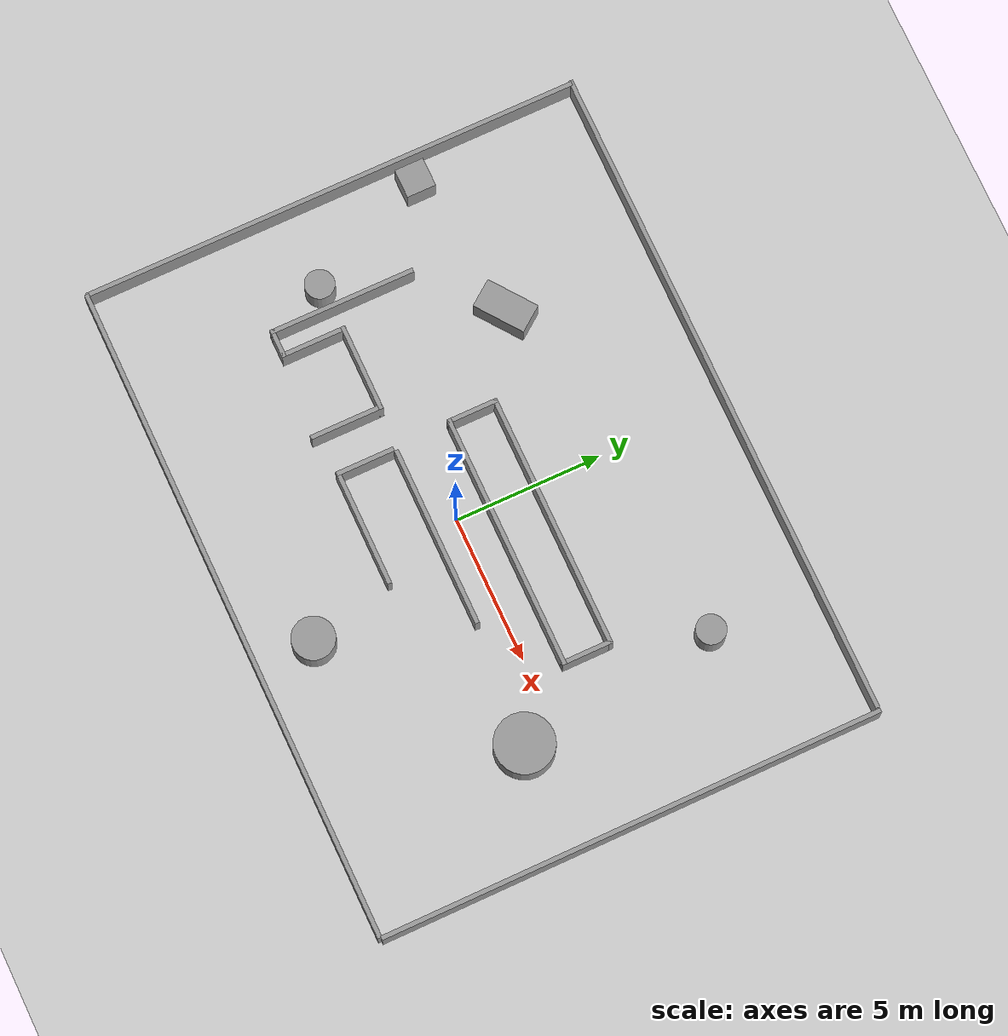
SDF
<sdf version="1.7">
 <world name="default">
  <model name="ground_plane">
   <static>1</static>
   <link name="link">
    <collision name="collision">
     <geometry><plane><normal>0 0 1</normal><size>100 100</size></plane></geometry>
     <surface><friction><ode><mu>100</mu><mu2>50</mu2></ode></friction></surface>
    </collision>
    <visual name="visual">
     <cast_shadows>0</cast_shadows>
     <geometry><plane><normal>0 0 1</normal><size>100 100</size></plane></geometry>
     <material>
      <script><uri>file://media/materials/scripts/gazebo.material</uri><name>Gazebo/Grey</name></script>
     </material>
    </visual>
   </link>
  </model>
  <model name="unit_box">
   <pose>-10.6452 3.41751 0.499995 0 1e-05 -0.000218</pose>
   <link name="link">
    <inertial>
     <mass>1</mass>
     <inertia>
      <ixx>0.166667</ixx>
      <ixy>0</ixy>
      <ixz>0</ixz>
      <iyy>0.166667</iyy>
      <iyz>0</iyz>
      <izz>0.166667</izz>
     </inertia>
    </inertial>
    <collision name="collision"><geometry><box><size>1 1 1</size></box></geometry></collision>
    <visual name="visual">
     <geometry><box><size>1 1 1</size></box></geometry>
     <material>
      <script><name>Gazebo/Grey</name><uri>file://media/materials/scripts/gazebo.material</uri></script>
     </material>
    </visual>
   </link>
  </model>
  <model name="unit_cylinder">
   <pose>-8.67512 -0.83922 0.499998 3e-06 4e-06 -2e-06</pose>
   <link name="link">
    <inertial>
     <mass>1</mass>
     <inertia><ixx>0.145833</ixx><ixy>0</ixy><ixz>0</ixz><iyy>0.145833</iyy><iyz>0</iyz><izz>0.125</izz></inertia>
    </inertial>
    <collision name="collision">
     <geometry><cylinder><radius>0.5</radius><length>1</length></cylinder></geometry>
    </collision>
    <visual name="visual">
     <geometry><cylinder><radius>0.5</radius><length>1</length></cylinder></geometry>
     <material>
      <script><name>Gazebo/Grey</name><uri>file://media/materials/scripts/gazebo.material</uri></script>
     </material>
    </visual>
   </link>
  </model>
  <model name="building1">
   <link name="Wall_0">
    <pose>0.188 -2.6335 0 0 -0 0</pose>
    <visual name="Wall_0_Visual">
     <pose>0 0 0.5 0 -0 0</pose>
     <geometry><box><size>4 0.15 1</size></box></geometry>
     <material>
      <script><uri>file://media/materials/scripts/gazebo.material</uri><name>Gazebo/Grey</name></script>
      <ambient>1 1 1 1</ambient>
      <shader type="pixel"/>
     </material>
     <meta><layer>0</layer></meta>
    </visual>
    <collision name="Wall_0_Collision">
     <pose>0 0 0.5 0 -0 0</pose>
     <geometry><box><size>4 0.15 1</size></box></geometry>
     <surface>
      <friction>
       <ode><mu>1</mu><mu2>1</mu2><fdir1>0 0 0</fdir1><slip1>0</slip1><slip2>0</slip2></ode>
       <torsional>
        <coefficient>1</coefficient>
        <patch_radius>0</patch_radius>
        <surface_radius>0</surface_radius>
        <use_patch_radius>1</use_patch_radius>
        <ode><slip>0</slip></ode>
       </torsional>
      </friction>
      <bounce><restitution_coefficient>0</restitution_coefficient><threshold>1e+06</threshold></bounce>
      <contact>
       <collide_without_contact>0</collide_without_contact>
       <collide_without_contact_bitmask>1</collide_without_contact_bitmask>
       <collide_bitmask>1</collide_bitmask>
       <ode>
        <soft_cfm>0</soft_cfm>
        <soft_erp>0.2</soft_erp>
        <kp>1e+13</kp>
        <kd>1</kd>
        <max_vel>0.01</max_vel>
        <min_depth>0</min_depth>
       </ode>
       <bullet>
        <split_impulse>1</split_impulse>
        <split_impulse_penetration_threshold>-0.01</split_impulse_penetration_threshold>
        <soft_cfm>0</soft_cfm>
        <soft_erp>0.2</soft_erp>
        <kp>1e+13</kp>
        <kd>1</kd>
       </bullet>
      </contact>
     </surface>
    </collision>
   </link>
   <link name="Wall_10">
    <pose>-6.863 -0.2005 0 0 0 -1.5708</pose>
    <visual name="Wall_10_Visual">
     <pose>0 0 0.5 0 -0 0</pose>
     <geometry><box><size>5 0.15 1</size></box></geometry>
     <material>
      <script><uri>file://media/materials/scripts/gazebo.material</uri><name>Gazebo/Grey</name></script>
      <ambient>1 1 1 1</ambient>
      <shader type="pixel"/>
     </material>
     <meta><layer>0</layer></meta>
    </visual>
    <collision name="Wall_10_Collision">
     <pose>0 0 0.5 0 -0 0</pose>
     <geometry><box><size>5 0.15 1</size></box></geometry>
     <surface>
      <friction>
       <ode><mu>1</mu><mu2>1</mu2><fdir1>0 0 0</fdir1><slip1>0</slip1><slip2>0</slip2></ode>
       <torsional>
        <coefficient>1</coefficient>
        <patch_radius>0</patch_radius>
        <surface_radius>0</surface_radius>
        <use_patch_radius>1</use_patch_radius>
        <ode><slip>0</slip></ode>
       </torsional>
      </friction>
      <bounce><restitution_coefficient>0</restitution_coefficient><threshold>1e+06</threshold></bounce>
      <contact>
       <collide_without_contact>0</collide_without_contact>
       <collide_without_contact_bitmask>1</collide_without_contact_bitmask>
       <collide_bitmask>1</collide_bitmask>
       <ode>
        <soft_cfm>0</soft_cfm>
        <soft_erp>0.2</soft_erp>
        <kp>1e+13</kp>
        <kd>1</kd>
        <max_vel>0.01</max_vel>
        <min_depth>0</min_depth>
       </ode>
       <bullet>
        <split_impulse>1</split_impulse>
        <split_impulse_penetration_threshold>-0.01</split_impulse_penetration_threshold>
        <soft_cfm>0</soft_cfm>
        <soft_erp>0.2</soft_erp>
        <kp>1e+13</kp>
        <kd>1</kd>
       </bullet>
      </contact>
     </surface>
    </collision>
   </link>
   <link name="Wall_11">
    <pose>-6.438 -2.6255 0 0 -0 0</pose>
    <visual name="Wall_11_Visual">
     <pose>0 0 0.5 0 -0 0</pose>
     <geometry><box><size>1 0.15 1</size></box></geometry>
     <material>
      <script><uri>file://media/materials/scripts/gazebo.material</uri><name>Gazebo/Grey</name></script>
      <ambient>1 1 1 1</ambient>
      <shader type="pixel"/>
     </material>
     <meta><layer>0</layer></meta>
    </visual>
    <collision name="Wall_11_Collision">
     <pose>0 0 0.5 0 -0 0</pose>
     <geometry><box><size>1 0.15 1</size></box></geometry>
     <surface>
      <friction>
       <ode><mu>1</mu><mu2>1</mu2><fdir1>0 0 0</fdir1><slip1>0</slip1><slip2>0</slip2></ode>
       <torsional>
        <coefficient>1</coefficient>
        <patch_radius>0</patch_radius>
        <surface_radius>0</surface_radius>
        <use_patch_radius>1</use_patch_radius>
        <ode><slip>0</slip></ode>
       </torsional>
      </friction>
      <bounce><restitution_coefficient>0</restitution_coefficient><threshold>1e+06</threshold></bounce>
      <contact>
       <collide_without_contact>0</collide_without_contact>
       <collide_without_contact_bitmask>1</collide_without_contact_bitmask>
       <collide_bitmask>1</collide_bitmask>
       <ode>
        <soft_cfm>0</soft_cfm>
        <soft_erp>0.2</soft_erp>
        <kp>1e+13</kp>
        <kd>1</kd>
        <max_vel>0.01</max_vel>
        <min_depth>0</min_depth>
       </ode>
       <bullet>
        <split_impulse>1</split_impulse>
        <split_impulse_penetration_threshold>-0.01</split_impulse_penetration_threshold>
        <soft_cfm>0</soft_cfm>
        <soft_erp>0.2</soft_erp>
        <kp>1e+13</kp>
        <kd>1</kd>
       </bullet>
      </contact>
     </surface>
    </collision>
   </link>
   <link name="Wall_12">
    <pose>-6.013 -1.5755 0 0 -0 1.5708</pose>
    <visual name="Wall_12_Visual">
     <pose>0 0 0.5 0 -0 0</pose>
     <geometry><box><size>2.25 0.15 1</size></box></geometry>
     <material>
      <script><uri>file://media/materials/scripts/gazebo.material</uri><name>Gazebo/Grey</name></script>
      <ambient>1 1 1 1</ambient>
      <shader type="pixel"/>
     </material>
     <meta><layer>0</layer></meta>
    </visual>
    <collision name="Wall_12_Collision">
     <pose>0 0 0.5 0 -0 0</pose>
     <geometry><box><size>2.25 0.15 1</size></box></geometry>
     <surface>
      <friction>
       <ode><mu>1</mu><mu2>1</mu2><fdir1>0 0 0</fdir1><slip1>0</slip1><slip2>0</slip2></ode>
       <torsional>
        <coefficient>1</coefficient>
        <patch_radius>0</patch_radius>
        <surface_radius>0</surface_radius>
        <use_patch_radius>1</use_patch_radius>
        <ode><slip>0</slip></ode>
       </torsional>
      </friction>
      <bounce><restitution_coefficient>0</restitution_coefficient><threshold>1e+06</threshold></bounce>
      <contact>
       <collide_without_contact>0</collide_without_contact>
       <collide_without_contact_bitmask>1</collide_without_contact_bitmask>
       <collide_bitmask>1</collide_bitmask>
       <ode>
        <soft_cfm>0</soft_cfm>
        <soft_erp>0.2</soft_erp>
        <kp>1e+13</kp>
        <kd>1</kd>
        <max_vel>0.01</max_vel>
        <min_depth>0</min_depth>
       </ode>
       <bullet>
        <split_impulse>1</split_impulse>
        <split_impulse_penetration_threshold>-0.01</split_impulse_penetration_threshold>
        <soft_cfm>0</soft_cfm>
        <soft_erp>0.2</soft_erp>
        <kp>1e+13</kp>
        <kd>1</kd>
       </bullet>
      </contact>
     </surface>
    </collision>
   </link>
   <link name="Wall_13">
    <pose>-4.588 -0.5255 0 0 -0 0</pose>
    <visual name="Wall_13_Visual">
     <pose>0 0 0.5 0 -0 0</pose>
     <geometry><box><size>3 0.15 1</size></box></geometry>
     <material>
      <script><uri>file://media/materials/scripts/gazebo.material</uri><name>Gazebo/Grey</name></script>
      <ambient>1 1 1 1</ambient>
      <shader type="pixel"/>
     </material>
     <meta><layer>0</layer></meta>
    </visual>
    <collision name="Wall_13_Collision">
     <pose>0 0 0.5 0 -0 0</pose>
     <geometry><box><size>3 0.15 1</size></box></geometry>
     <surface>
      <friction>
       <ode><mu>1</mu><mu2>1</mu2><fdir1>0 0 0</fdir1><slip1>0</slip1><slip2>0</slip2></ode>
       <torsional>
        <coefficient>1</coefficient>
        <patch_radius>0</patch_radius>
        <surface_radius>0</surface_radius>
        <use_patch_radius>1</use_patch_radius>
        <ode><slip>0</slip></ode>
       </torsional>
      </friction>
      <bounce><restitution_coefficient>0</restitution_coefficient><threshold>1e+06</threshold></bounce>
      <contact>
       <collide_without_contact>0</collide_without_contact>
       <collide_without_contact_bitmask>1</collide_without_contact_bitmask>
       <collide_bitmask>1</collide_bitmask>
       <ode>
        <soft_cfm>0</soft_cfm>
        <soft_erp>0.2</soft_erp>
        <kp>1e+13</kp>
        <kd>1</kd>
        <max_vel>0.01</max_vel>
        <min_depth>0</min_depth>
       </ode>
       <bullet>
        <split_impulse>1</split_impulse>
        <split_impulse_penetration_threshold>-0.01</split_impulse_penetration_threshold>
        <soft_cfm>0</soft_cfm>
        <soft_erp>0.2</soft_erp>
        <kp>1e+13</kp>
        <kd>1</kd>
       </bullet>
      </contact>
     </surface>
    </collision>
   </link>
   <link name="Wall_14">
    <pose>-3.163 -1.7005 0 0 0 -1.5708</pose>
    <visual name="Wall_14_Visual">
     <pose>0 0 0.5 0 -0 0</pose>
     <geometry><box><size>2.5 0.15 1</size></box></geometry>
     <material>
      <script><uri>file://media/materials/scripts/gazebo.material</uri><name>Gazebo/Grey</name></script>
      <ambient>1 1 1 1</ambient>
      <shader type="pixel"/>
     </material>
     <meta><layer>0</layer></meta>
    </visual>
    <collision name="Wall_14_Collision">
     <pose>0 0 0.5 0 -0 0</pose>
     <geometry><box><size>2.5 0.15 1</size></box></geometry>
     <surface>
      <friction>
       <ode><mu>1</mu><mu2>1</mu2><fdir1>0 0 0</fdir1><slip1>0</slip1><slip2>0</slip2></ode>
       <torsional>
        <coefficient>1</coefficient>
        <patch_radius>0</patch_radius>
        <surface_radius>0</surface_radius>
        <use_patch_radius>1</use_patch_radius>
        <ode><slip>0</slip></ode>
       </torsional>
      </friction>
      <bounce><restitution_coefficient>0</restitution_coefficient><threshold>1e+06</threshold></bounce>
      <contact>
       <collide_without_contact>0</collide_without_contact>
       <collide_without_contact_bitmask>1</collide_without_contact_bitmask>
       <collide_bitmask>1</collide_bitmask>
       <ode>
        <soft_cfm>0</soft_cfm>
        <soft_erp>0.2</soft_erp>
        <kp>1e+13</kp>
        <kd>1</kd>
        <max_vel>0.01</max_vel>
        <min_depth>0</min_depth>
       </ode>
       <bullet>
        <split_impulse>1</split_impulse>
        <split_impulse_penetration_threshold>-0.01</split_impulse_penetration_threshold>
        <soft_cfm>0</soft_cfm>
        <soft_erp>0.2</soft_erp>
        <kp>1e+13</kp>
        <kd>1</kd>
       </bullet>
      </contact>
     </surface>
    </collision>
   </link>
   <link name="Wall_2">
    <pose>-1.737 -1.7085 0 0 -0 1.5708</pose>
    <visual name="Wall_2_Visual">
     <pose>0 0 0.5 0 -0 0</pose>
     <geometry><box><size>2 0.15 1</size></box></geometry>
     <material>
      <script><uri>file://media/materials/scripts/gazebo.material</uri><name>Gazebo/Grey</name></script>
      <ambient>1 1 1 1</ambient>
      <shader type="pixel"/>
     </material>
     <meta><layer>0</layer></meta>
    </visual>
    <collision name="Wall_2_Collision">
     <pose>0 0 0.5 0 -0 0</pose>
     <geometry><box><size>2 0.15 1</size></box></geometry>
     <surface>
      <friction>
       <ode><mu>1</mu><mu2>1</mu2><fdir1>0 0 0</fdir1><slip1>0</slip1><slip2>0</slip2></ode>
       <torsional>
        <coefficient>1</coefficient>
        <patch_radius>0</patch_radius>
        <surface_radius>0</surface_radius>
        <use_patch_radius>1</use_patch_radius>
        <ode><slip>0</slip></ode>
       </torsional>
      </friction>
      <bounce><restitution_coefficient>0</restitution_coefficient><threshold>1e+06</threshold></bounce>
      <contact>
       <collide_without_contact>0</collide_without_contact>
       <collide_without_contact_bitmask>1</collide_without_contact_bitmask>
       <collide_bitmask>1</collide_bitmask>
       <ode>
        <soft_cfm>0</soft_cfm>
        <soft_erp>0.2</soft_erp>
        <kp>1e+13</kp>
        <kd>1</kd>
        <max_vel>0.01</max_vel>
        <min_depth>0</min_depth>
       </ode>
       <bullet>
        <split_impulse>1</split_impulse>
        <split_impulse_penetration_threshold>-0.01</split_impulse_penetration_threshold>
        <soft_cfm>0</soft_cfm>
        <soft_erp>0.2</soft_erp>
        <kp>1e+13</kp>
        <kd>1</kd>
       </bullet>
      </contact>
     </surface>
    </collision>
   </link>
   <link name="Wall_3">
    <pose>1.41966 -0.65738 0 0 -0 0</pose>
    <inertial>
     <inertia><ixx>0</ixx><ixy>0</ixy><ixz>0</ixz><iyy>0</iyy><iyz>0</iyz><izz>0</izz></inertia>
     <mass>0</mass>
    </inertial>
    <visual name="Wall_3_Visual">
     <pose>0 0 0.5 0 -0 0</pose>
     <geometry><box><size>6.16349 0.15 1</size></box></geometry>
     <material>
      <script><uri>file://media/materials/scripts/gazebo.material</uri><name>Gazebo/Grey</name></script>
      <ambient>1 1 1 1</ambient>
      <shader type="pixel"/>
     </material>
     <meta><layer>0</layer></meta>
    </visual>
    <collision name="Wall_3_Collision">
     <pose>0 0 0.5 0 -0 0</pose>
     <geometry><box><size>6.16349 0.15 1</size></box></geometry>
     <surface>
      <friction>
       <ode><mu>1</mu><mu2>1</mu2><fdir1>0 0 0</fdir1><slip1>0</slip1><slip2>0</slip2></ode>
       <torsional>
        <coefficient>1</coefficient>
        <patch_radius>0</patch_radius>
        <surface_radius>0</surface_radius>
        <use_patch_radius>1</use_patch_radius>
        <ode><slip>0</slip></ode>
       </torsional>
      </friction>
      <bounce><restitution_coefficient>0</restitution_coefficient><threshold>1e+06</threshold></bounce>
      <contact>
       <collide_without_contact>0</collide_without_contact>
       <collide_without_contact_bitmask>1</collide_without_contact_bitmask>
       <collide_bitmask>1</collide_bitmask>
       <ode>
        <soft_cfm>0</soft_cfm>
        <soft_erp>0.2</soft_erp>
        <kp>1e+13</kp>
        <kd>1</kd>
        <max_vel>0.01</max_vel>
        <min_depth>0</min_depth>
       </ode>
       <bullet>
        <split_impulse>1</split_impulse>
        <split_impulse_penetration_threshold>-0.01</split_impulse_penetration_threshold>
        <soft_cfm>0</soft_cfm>
        <soft_erp>0.2</soft_erp>
        <kp>1e+13</kp>
        <kd>1</kd>
       </bullet>
      </contact>
     </surface>
    </collision>
   </link>
   <link name="Wall_5">
    <pose>2.479 1.2755 0 0 -0 0</pose>
    <visual name="Wall_5_Visual">
     <pose>0 0 0.5 0 -0 0</pose>
     <geometry><box><size>8.75 0.15 1</size></box></geometry>
     <material>
      <script><uri>file://media/materials/scripts/gazebo.material</uri><name>Gazebo/Grey</name></script>
      <ambient>1 1 1 1</ambient>
      <shader type="pixel"/>
     </material>
     <meta><layer>0</layer></meta>
    </visual>
    <collision name="Wall_5_Collision">
     <pose>0 0 0.5 0 -0 0</pose>
     <geometry><box><size>8.75 0.15 1</size></box></geometry>
     <surface>
      <friction>
       <ode><mu>1</mu><mu2>1</mu2><fdir1>0 0 0</fdir1><slip1>0</slip1><slip2>0</slip2></ode>
       <torsional>
        <coefficient>1</coefficient>
        <patch_radius>0</patch_radius>
        <surface_radius>0</surface_radius>
        <use_patch_radius>1</use_patch_radius>
        <ode><slip>0</slip></ode>
       </torsional>
      </friction>
      <bounce><restitution_coefficient>0</restitution_coefficient><threshold>1e+06</threshold></bounce>
      <contact>
       <collide_without_contact>0</collide_without_contact>
       <collide_without_contact_bitmask>1</collide_without_contact_bitmask>
       <collide_bitmask>1</collide_bitmask>
       <ode>
        <soft_cfm>0</soft_cfm>
        <soft_erp>0.2</soft_erp>
        <kp>1e+13</kp>
        <kd>1</kd>
        <max_vel>0.01</max_vel>
        <min_depth>0</min_depth>
       </ode>
       <bullet>
        <split_impulse>1</split_impulse>
        <split_impulse_penetration_threshold>-0.01</split_impulse_penetration_threshold>
        <soft_cfm>0</soft_cfm>
        <soft_erp>0.2</soft_erp>
        <kp>1e+13</kp>
        <kd>1</kd>
       </bullet>
      </contact>
     </surface>
    </collision>
   </link>
   <link name="Wall_6">
    <pose>6.779 2.0755 0 0 -0 1.5708</pose>
    <visual name="Wall_6_Visual">
     <pose>0 0 0.5 0 -0 0</pose>
     <geometry><box><size>1.75 0.15 1</size></box></geometry>
     <material>
      <script><uri>file://media/materials/scripts/gazebo.material</uri><name>Gazebo/Grey</name></script>
      <ambient>1 1 1 1</ambient>
      <shader type="pixel"/>
     </material>
     <meta><layer>0</layer></meta>
    </visual>
    <collision name="Wall_6_Collision">
     <pose>0 0 0.5 0 -0 0</pose>
     <geometry><box><size>1.75 0.15 1</size></box></geometry>
     <surface>
      <friction>
       <ode><mu>1</mu><mu2>1</mu2><fdir1>0 0 0</fdir1><slip1>0</slip1><slip2>0</slip2></ode>
       <torsional>
        <coefficient>1</coefficient>
        <patch_radius>0</patch_radius>
        <surface_radius>0</surface_radius>
        <use_patch_radius>1</use_patch_radius>
        <ode><slip>0</slip></ode>
       </torsional>
      </friction>
      <bounce><restitution_coefficient>0</restitution_coefficient><threshold>1e+06</threshold></bounce>
      <contact>
       <collide_without_contact>0</collide_without_contact>
       <collide_without_contact_bitmask>1</collide_without_contact_bitmask>
       <collide_bitmask>1</collide_bitmask>
       <ode>
        <soft_cfm>0</soft_cfm>
        <soft_erp>0.2</soft_erp>
        <kp>1e+13</kp>
        <kd>1</kd>
        <max_vel>0.01</max_vel>
        <min_depth>0</min_depth>
       </ode>
       <bullet>
        <split_impulse>1</split_impulse>
        <split_impulse_penetration_threshold>-0.01</split_impulse_penetration_threshold>
        <soft_cfm>0</soft_cfm>
        <soft_erp>0.2</soft_erp>
        <kp>1e+13</kp>
        <kd>1</kd>
       </bullet>
      </contact>
     </surface>
    </collision>
   </link>
   <link name="Wall_6_clone">
    <pose>12.2823 1.06209 0 0 -0 1.5708</pose>
    <inertial>
     <inertia><ixx>0</ixx><ixy>0</ixy><ixz>0</ixz><iyy>0</iyy><iyz>0</iyz><izz>0</izz></inertia>
     <mass>0</mass>
    </inertial>
    <visual name="Wall_6_Visual">
     <pose>0 0 0.5 0 -0 0</pose>
     <geometry><box><size>17.1178 0.15 1</size></box></geometry>
     <material>
      <script><uri>file://media/materials/scripts/gazebo.material</uri><name>Gazebo/Grey</name></script>
      <ambient>1 1 1 1</ambient>
      <shader type="pixel"/>
     </material>
     <meta><layer>0</layer></meta>
    </visual>
    <collision name="Wall_6_Collision">
     <pose>0 0 0.5 0 -0 0</pose>
     <geometry><box><size>17.1178 0.15 1</size></box></geometry>
     <surface>
      <friction>
       <ode><mu>1</mu><mu2>1</mu2><fdir1>0 0 0</fdir1><slip1>0</slip1><slip2>0</slip2></ode>
       <torsional>
        <coefficient>1</coefficient>
        <patch_radius>0</patch_radius>
        <surface_radius>0</surface_radius>
        <use_patch_radius>1</use_patch_radius>
        <ode><slip>0</slip></ode>
       </torsional>
      </friction>
      <bounce><restitution_coefficient>0</restitution_coefficient><threshold>1e+06</threshold></bounce>
      <contact>
       <collide_without_contact>0</collide_without_contact>
       <collide_without_contact_bitmask>1</collide_without_contact_bitmask>
       <collide_bitmask>1</collide_bitmask>
       <ode>
        <soft_cfm>0</soft_cfm>
        <soft_erp>0.2</soft_erp>
        <kp>1e+13</kp>
        <kd>1</kd>
        <max_vel>0.01</max_vel>
        <min_depth>0</min_depth>
       </ode>
       <bullet>
        <split_impulse>1</split_impulse>
        <split_impulse_penetration_threshold>-0.01</split_impulse_penetration_threshold>
        <soft_cfm>0</soft_cfm>
        <soft_erp>0.2</soft_erp>
        <kp>1e+13</kp>
        <kd>1</kd>
       </bullet>
      </contact>
     </surface>
    </collision>
   </link>
   <link name="Wall_6_clone_clone">
    <pose>-10.4443 1.02433 0 0 -0 1.5708</pose>
    <inertial>
     <inertia><ixx>0</ixx><ixy>0</ixy><ixz>0</ixz><iyy>0</iyy><iyz>0</iyz><izz>0</izz></inertia>
     <mass>0</mass>
    </inertial>
    <visual name="Wall_6_Visual">
     <pose>0 0 0.5 0 -0 0</pose>
     <geometry><box><size>17.1178 0.15 1</size></box></geometry>
     <material>
      <script><uri>file://media/materials/scripts/gazebo.material</uri><name>Gazebo/Grey</name></script>
      <ambient>1 1 1 1</ambient>
      <shader type="pixel"/>
     </material>
     <meta><layer>0</layer></meta>
    </visual>
    <collision name="Wall_6_Collision">
     <pose>0 0 0.5 0 -0 0</pose>
     <geometry><box><size>17.1178 0.15 1</size></box></geometry>
     <surface>
      <friction>
       <ode><mu>1</mu><mu2>1</mu2><fdir1>0 0 0</fdir1><slip1>0</slip1><slip2>0</slip2></ode>
       <torsional>
        <coefficient>1</coefficient>
        <patch_radius>0</patch_radius>
        <surface_radius>0</surface_radius>
        <use_patch_radius>1</use_patch_radius>
        <ode><slip>0</slip></ode>
       </torsional>
      </friction>
      <bounce><restitution_coefficient>0</restitution_coefficient><threshold>1e+06</threshold></bounce>
      <contact>
       <collide_without_contact>0</collide_without_contact>
       <collide_without_contact_bitmask>1</collide_without_contact_bitmask>
       <collide_bitmask>1</collide_bitmask>
       <ode>
        <soft_cfm>0</soft_cfm>
        <soft_erp>0.2</soft_erp>
        <kp>1e+13</kp>
        <kd>1</kd>
        <max_vel>0.01</max_vel>
        <min_depth>0</min_depth>
       </ode>
       <bullet>
        <split_impulse>1</split_impulse>
        <split_impulse_penetration_threshold>-0.01</split_impulse_penetration_threshold>
        <soft_cfm>0</soft_cfm>
        <soft_erp>0.2</soft_erp>
        <kp>1e+13</kp>
        <kd>1</kd>
       </bullet>
      </contact>
     </surface>
    </collision>
   </link>
   <link name="Wall_7">
    <pose>2.479 2.8755 0 0 -0 3.14159</pose>
    <visual name="Wall_7_Visual">
     <pose>0 0 0.5 0 -0 0</pose>
     <geometry><box><size>8.75 0.15 1</size></box></geometry>
     <material>
      <script><uri>file://media/materials/scripts/gazebo.material</uri><name>Gazebo/Grey</name></script>
      <ambient>1 1 1 1</ambient>
      <shader type="pixel"/>
     </material>
     <meta><layer>0</layer></meta>
    </visual>
    <collision name="Wall_7_Collision">
     <pose>0 0 0.5 0 -0 0</pose>
     <geometry><box><size>8.75 0.15 1</size></box></geometry>
     <surface>
      <friction>
       <ode><mu>1</mu><mu2>1</mu2><fdir1>0 0 0</fdir1><slip1>0</slip1><slip2>0</slip2></ode>
       <torsional>
        <coefficient>1</coefficient>
        <patch_radius>0</patch_radius>
        <surface_radius>0</surface_radius>
        <use_patch_radius>1</use_patch_radius>
        <ode><slip>0</slip></ode>
       </torsional>
      </friction>
      <bounce><restitution_coefficient>0</restitution_coefficient><threshold>1e+06</threshold></bounce>
      <contact>
       <collide_without_contact>0</collide_without_contact>
       <collide_without_contact_bitmask>1</collide_without_contact_bitmask>
       <collide_bitmask>1</collide_bitmask>
       <ode>
        <soft_cfm>0</soft_cfm>
        <soft_erp>0.2</soft_erp>
        <kp>1e+13</kp>
        <kd>1</kd>
        <max_vel>0.01</max_vel>
        <min_depth>0</min_depth>
       </ode>
       <bullet>
        <split_impulse>1</split_impulse>
        <split_impulse_penetration_threshold>-0.01</split_impulse_penetration_threshold>
        <soft_cfm>0</soft_cfm>
        <soft_erp>0.2</soft_erp>
        <kp>1e+13</kp>
        <kd>1</kd>
       </bullet>
      </contact>
     </surface>
    </collision>
   </link>
   <link name="Wall_7_clone">
    <pose>0.814901 9.57474 0 0 -0 3.14159</pose>
    <inertial>
     <inertia><ixx>0</ixx><ixy>0</ixy><ixz>0</ixz><iyy>0</iyy><iyz>0</iyz><izz>0</izz></inertia>
     <mass>0</mass>
    </inertial>
    <visual name="Wall_7_Visual">
     <pose>0 0 0.5 0 -0 0</pose>
     <geometry><box><size>22.7246 0.15 1</size></box></geometry>
     <material>
      <script><uri>file://media/materials/scripts/gazebo.material</uri><name>Gazebo/Grey</name></script>
      <ambient>1 1 1 1</ambient>
      <shader type="pixel"/>
     </material>
     <meta><layer>0</layer></meta>
    </visual>
    <collision name="Wall_7_Collision">
     <pose>0 0 0.5 0 -0 0</pose>
     <geometry><box><size>22.7246 0.15 1</size></box></geometry>
     <surface>
      <friction>
       <ode><mu>1</mu><mu2>1</mu2><fdir1>0 0 0</fdir1><slip1>0</slip1><slip2>0</slip2></ode>
       <torsional>
        <coefficient>1</coefficient>
        <patch_radius>0</patch_radius>
        <surface_radius>0</surface_radius>
        <use_patch_radius>1</use_patch_radius>
        <ode><slip>0</slip></ode>
       </torsional>
      </friction>
      <bounce><restitution_coefficient>0</restitution_coefficient><threshold>1e+06</threshold></bounce>
      <contact>
       <collide_without_contact>0</collide_without_contact>
       <collide_without_contact_bitmask>1</collide_without_contact_bitmask>
       <collide_bitmask>1</collide_bitmask>
       <ode>
        <soft_cfm>0</soft_cfm>
        <soft_erp>0.2</soft_erp>
        <kp>1e+13</kp>
        <kd>1</kd>
        <max_vel>0.01</max_vel>
        <min_depth>0</min_depth>
       </ode>
       <bullet>
        <split_impulse>1</split_impulse>
        <split_impulse_penetration_threshold>-0.01</split_impulse_penetration_threshold>
        <soft_cfm>0</soft_cfm>
        <soft_erp>0.2</soft_erp>
        <kp>1e+13</kp>
        <kd>1</kd>
       </bullet>
      </contact>
     </surface>
    </collision>
   </link>
   <link name="Wall_7_clone_clone">
    <pose>0.891179 -7.53134 0 0 -0 3.14159</pose>
    <inertial>
     <inertia><ixx>0</ixx><ixy>0</ixy><ixz>0</ixz><iyy>0</iyy><iyz>0</iyz><izz>0</izz></inertia>
     <mass>0</mass>
    </inertial>
    <visual name="Wall_7_Visual">
     <pose>0 0 0.5 0 -0 0</pose>
     <geometry><box><size>22.7246 0.15 1</size></box></geometry>
     <material>
      <script><uri>file://media/materials/scripts/gazebo.material</uri><name>Gazebo/Grey</name></script>
      <ambient>1 1 1 1</ambient>
      <shader type="pixel"/>
     </material>
     <meta><layer>0</layer></meta>
    </visual>
    <collision name="Wall_7_Collision">
     <pose>0 0 0.5 0 -0 0</pose>
     <geometry><box><size>22.7246 0.15 1</size></box></geometry>
     <surface>
      <friction>
       <ode><mu>1</mu><mu2>1</mu2><fdir1>0 0 0</fdir1><slip1>0</slip1><slip2>0</slip2></ode>
       <torsional>
        <coefficient>1</coefficient>
        <patch_radius>0</patch_radius>
        <surface_radius>0</surface_radius>
        <use_patch_radius>1</use_patch_radius>
        <ode><slip>0</slip></ode>
       </torsional>
      </friction>
      <bounce><restitution_coefficient>0</restitution_coefficient><threshold>1e+06</threshold></bounce>
      <contact>
       <collide_without_contact>0</collide_without_contact>
       <collide_without_contact_bitmask>1</collide_without_contact_bitmask>
       <collide_bitmask>1</collide_bitmask>
       <ode>
        <soft_cfm>0</soft_cfm>
        <soft_erp>0.2</soft_erp>
        <kp>1e+13</kp>
        <kd>1</kd>
        <max_vel>0.01</max_vel>
        <min_depth>0</min_depth>
       </ode>
       <bullet>
        <split_impulse>1</split_impulse>
        <split_impulse_penetration_threshold>-0.01</split_impulse_penetration_threshold>
        <soft_cfm>0</soft_cfm>
        <soft_erp>0.2</soft_erp>
        <kp>1e+13</kp>
        <kd>1</kd>
       </bullet>
      </contact>
     </surface>
    </collision>
   </link>
   <link name="Wall_8">
    <pose>-1.821 2.0755 0 0 0 -1.5708</pose>
    <visual name="Wall_8_Visual">
     <pose>0 0 0.5 0 -0 0</pose>
     <geometry><box><size>1.75 0.15 1</size></box></geometry>
     <material>
      <script><uri>file://media/materials/scripts/gazebo.material</uri><name>Gazebo/Grey</name></script>
      <ambient>1 1 1 1</ambient>
      <shader type="pixel"/>
     </material>
     <meta><layer>0</layer></meta>
    </visual>
    <collision name="Wall_8_Collision">
     <pose>0 0 0.5 0 -0 0</pose>
     <geometry><box><size>1.75 0.15 1</size></box></geometry>
     <surface>
      <friction>
       <ode><mu>1</mu><mu2>1</mu2><fdir1>0 0 0</fdir1><slip1>0</slip1><slip2>0</slip2></ode>
       <torsional>
        <coefficient>1</coefficient>
        <patch_radius>0</patch_radius>
        <surface_radius>0</surface_radius>
        <use_patch_radius>1</use_patch_radius>
        <ode><slip>0</slip></ode>
       </torsional>
      </friction>
      <bounce><restitution_coefficient>0</restitution_coefficient><threshold>1e+06</threshold></bounce>
      <contact>
       <collide_without_contact>0</collide_without_contact>
       <collide_without_contact_bitmask>1</collide_without_contact_bitmask>
       <collide_bitmask>1</collide_bitmask>
       <ode>
        <soft_cfm>0</soft_cfm>
        <soft_erp>0.2</soft_erp>
        <kp>1e+13</kp>
        <kd>1</kd>
        <max_vel>0.01</max_vel>
        <min_depth>0</min_depth>
       </ode>
       <bullet>
        <split_impulse>1</split_impulse>
        <split_impulse_penetration_threshold>-0.01</split_impulse_penetration_threshold>
        <soft_cfm>0</soft_cfm>
        <soft_erp>0.2</soft_erp>
        <kp>1e+13</kp>
        <kd>1</kd>
       </bullet>
      </contact>
     </surface>
    </collision>
   </link>
   <link name="link_0">
    <inertial>
     <mass>3.97615</mass>
     <inertia><ixx>1.31945</ixx><ixy>0</ixy><ixz>0</ixz><iyy>1.31945</iyy><iyz>0</iyz><izz>1.97622</izz></inertia>
    </inertial>
    <pose>8.58859 -0.920444 0.5 0 -0 0</pose>
    <visual name="visual">
     <geometry><cylinder><radius>0.997013</radius><length>1</length></cylinder></geometry>
     <material>
      <lighting>1</lighting>
      <script><uri>file://media/materials/scripts/gazebo.material</uri><name>Gazebo/Grey</name></script>
      <shader type="pixel"/>
     </material>
    </visual>
    <collision name="collision">
     <geometry><cylinder><radius>0.997013</radius><length>1</length></cylinder></geometry>
     <surface>
      <friction>
       <ode><mu>1</mu><mu2>1</mu2><fdir1>0 0 0</fdir1><slip1>0</slip1><slip2>0</slip2></ode>
       <torsional>
        <coefficient>1</coefficient>
        <patch_radius>0</patch_radius>
        <surface_radius>0</surface_radius>
        <use_patch_radius>1</use_patch_radius>
        <ode><slip>0</slip></ode>
       </torsional>
      </friction>
      <bounce><restitution_coefficient>0</restitution_coefficient><threshold>1e+06</threshold></bounce>
      <contact>
       <collide_without_contact>0</collide_without_contact>
       <collide_without_contact_bitmask>1</collide_without_contact_bitmask>
       <collide_bitmask>1</collide_bitmask>
       <ode>
        <soft_cfm>0</soft_cfm>
        <soft_erp>0.2</soft_erp>
        <kp>1e+13</kp>
        <kd>1</kd>
        <max_vel>0.01</max_vel>
        <min_depth>0</min_depth>
       </ode>
       <bullet>
        <split_impulse>1</split_impulse>
        <split_impulse_penetration_threshold>-0.01</split_impulse_penetration_threshold>
        <soft_cfm>0</soft_cfm>
        <soft_erp>0.2</soft_erp>
        <kp>1e+13</kp>
        <kd>1</kd>
       </bullet>
      </contact>
     </surface>
    </collision>
   </link>
   <link name="link_0_clone">
    <inertial>
     <mass>2.04941</mass>
     <inertia>
      <ixx>0.433288</ixx>
      <ixy>0</ixy>
      <ixz>0</ixz>
      <iyy>0.433288</iyy>
      <iyz>0</iyz>
      <izz>0.525008</izz>
     </inertia>
    </inertial>
    <pose>2.78854 -5.53052 0.5 0 -0 0</pose>
    <visual name="visual">
     <geometry><cylinder><radius>0.715786</radius><length>1</length></cylinder></geometry>
     <material>
      <lighting>1</lighting>
      <script><uri>file://media/materials/scripts/gazebo.material</uri><name>Gazebo/Grey</name></script>
      <shader type="pixel"/>
     </material>
    </visual>
    <collision name="collision">
     <geometry><cylinder><radius>0.715786</radius><length>1</length></cylinder></geometry>
     <surface>
      <friction>
       <ode><mu>1</mu><mu2>1</mu2><fdir1>0 0 0</fdir1><slip1>0</slip1><slip2>0</slip2></ode>
       <torsional>
        <coefficient>1</coefficient>
        <patch_radius>0</patch_radius>
        <surface_radius>0</surface_radius>
        <use_patch_radius>1</use_patch_radius>
        <ode><slip>0</slip></ode>
       </torsional>
      </friction>
      <bounce><restitution_coefficient>0</restitution_coefficient><threshold>1e+06</threshold></bounce>
      <contact>
       <collide_without_contact>0</collide_without_contact>
       <collide_without_contact_bitmask>1</collide_without_contact_bitmask>
       <collide_bitmask>1</collide_bitmask>
       <ode>
        <soft_cfm>0</soft_cfm>
        <soft_erp>0.2</soft_erp>
        <kp>1e+13</kp>
        <kd>1</kd>
        <max_vel>0.01</max_vel>
        <min_depth>0</min_depth>
       </ode>
       <bullet>
        <split_impulse>1</split_impulse>
        <split_impulse_penetration_threshold>-0.01</split_impulse_penetration_threshold>
        <soft_cfm>0</soft_cfm>
        <soft_erp>0.2</soft_erp>
        <kp>1e+13</kp>
        <kd>1</kd>
       </bullet>
      </contact>
     </surface>
    </collision>
   </link>
   <link name="link_0_clone_0">
    <inertial>
     <mass>1.00234</mass>
     <inertia>
      <ixx>0.146322</ixx>
      <ixy>0</ixy>
      <ixz>0</ixz>
      <iyy>0.146322</iyy>
      <iyz>0</iyz>
      <izz>0.125588</izz>
     </inertia>
    </inertial>
    <pose>7.74842 5.92019 0.5 0 -0 0</pose>
    <visual name="visual">
     <geometry><cylinder><radius>0.500588</radius><length>1</length></cylinder></geometry>
     <material>
      <lighting>1</lighting>
      <script><uri>file://media/materials/scripts/gazebo.material</uri><name>Gazebo/Grey</name></script>
      <shader type="pixel"/>
     </material>
    </visual>
    <collision name="collision">
     <geometry><cylinder><radius>0.500588</radius><length>1</length></cylinder></geometry>
     <surface>
      <friction>
       <ode><mu>1</mu><mu2>1</mu2><fdir1>0 0 0</fdir1><slip1>0</slip1><slip2>0</slip2></ode>
       <torsional>
        <coefficient>1</coefficient>
        <patch_radius>0</patch_radius>
        <surface_radius>0</surface_radius>
        <use_patch_radius>1</use_patch_radius>
        <ode><slip>0</slip></ode>
       </torsional>
      </friction>
      <bounce><restitution_coefficient>0</restitution_coefficient><threshold>1e+06</threshold></bounce>
      <contact>
       <collide_without_contact>0</collide_without_contact>
       <collide_without_contact_bitmask>1</collide_without_contact_bitmask>
       <collide_bitmask>1</collide_bitmask>
       <ode>
        <soft_cfm>0</soft_cfm>
        <soft_erp>0.2</soft_erp>
        <kp>1e+13</kp>
        <kd>1</kd>
        <max_vel>0.01</max_vel>
        <min_depth>0</min_depth>
       </ode>
       <bullet>
        <split_impulse>1</split_impulse>
        <split_impulse_penetration_threshold>-0.01</split_impulse_penetration_threshold>
        <soft_cfm>0</soft_cfm>
        <soft_erp>0.2</soft_erp>
        <kp>1e+13</kp>
        <kd>1</kd>
       </bullet>
      </contact>
     </surface>
    </collision>
   </link>
   <link name="link_1">
    <inertial>
     <mass>1.83403</mass>
     <inertia>
      <ixx>0.666924</ixx>
      <ixy>0</ixy>
      <ixz>0</ixz>
      <iyy>0.305671</iyy>
      <iyz>0</iyz>
      <izz>0.666924</izz>
     </inertia>
    </inertial>
    <pose>-4.53893 4.49368 0.5 0 0 -0.927989</pose>
    <visual name="visual">
     <geometry><box><size>1 1.83403 1</size></box></geometry>
     <material>
      <lighting>1</lighting>
      <script><uri>file://media/materials/scripts/gazebo.material</uri><name>Gazebo/Grey</name></script>
      <shader type="pixel"/>
     </material>
    </visual>
    <collision name="collision">
     <geometry><box><size>1 1.83403 1</size></box></geometry>
     <surface>
      <friction>
       <ode><mu>1</mu><mu2>1</mu2><fdir1>0 0 0</fdir1><slip1>0</slip1><slip2>0</slip2></ode>
       <torsional>
        <coefficient>1</coefficient>
        <patch_radius>0</patch_radius>
        <surface_radius>0</surface_radius>
        <use_patch_radius>1</use_patch_radius>
        <ode><slip>0</slip></ode>
       </torsional>
      </friction>
      <bounce><restitution_coefficient>0</restitution_coefficient><threshold>1e+06</threshold></bounce>
      <contact>
       <collide_without_contact>0</collide_without_contact>
       <collide_without_contact_bitmask>1</collide_without_contact_bitmask>
       <collide_bitmask>1</collide_bitmask>
       <ode>
        <soft_cfm>0</soft_cfm>
        <soft_erp>0.2</soft_erp>
        <kp>1e+13</kp>
        <kd>1</kd>
        <max_vel>0.01</max_vel>
        <min_depth>0</min_depth>
       </ode>
       <bullet>
        <split_impulse>1</split_impulse>
        <split_impulse_penetration_threshold>-0.01</split_impulse_penetration_threshold>
        <soft_cfm>0</soft_cfm>
        <soft_erp>0.2</soft_erp>
        <kp>1e+13</kp>
        <kd>1</kd>
       </bullet>
      </contact>
     </surface>
    </collision>
   </link>
   <static>1</static>
   <pose>-1.00043 -0.22407 0 0 -0 0</pose>
  </model>
 </world>
</sdf>
